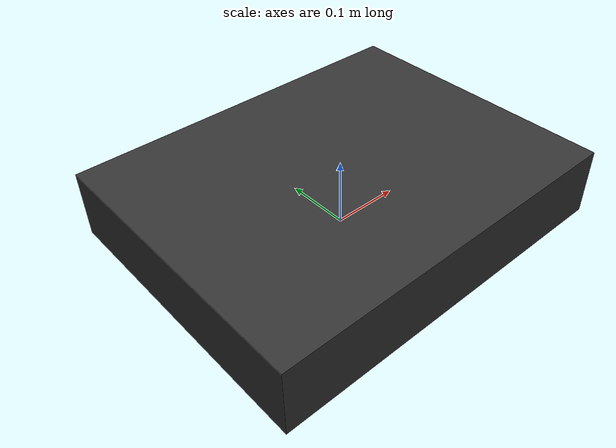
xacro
<?xml version="1.0"?>
<robot name="autodrive" xmlns:xacro="http://www.ros.org/wiki/xacro">

  <!--
    Vehicle geometry properties for the kinematic bicycle model.
    These values are the initial measurements and may be refined later.
  -->
  <xacro:property name="wheelbase" value="0.545"/>    <!-- [m] front-to-rear axle distance -->
  <xacro:property name="track_width" value="0.430"/>  <!-- [m] left-to-right wheel distance -->
  <xacro:property name="camera_height" value="0.68"/> <!-- [m] camera height above base_link -->

  <!--
    TODO: camera_front extrinsic is a placeholder. Replace x/y/z and roll/pitch/yaw
    below with the measured/calibrated values once the physical mount is finalized.
  -->
  <xacro:property name="camera_front_x" value="${wheelbase / 2.0}"/>
  <xacro:property name="camera_front_y" value="0.0"/>
  <xacro:property name="camera_front_z" value="${camera_height}"/>
  <xacro:property name="camera_front_roll" value="0.0"/>
  <xacro:property name="camera_front_pitch" value="0.0"/>
  <xacro:property name="camera_front_yaw" value="0.0"/>

  <xacro:property name="camera_rear_x" value="${-wheelbase / 2.0}"/>
  <xacro:property name="camera_rear_y" value="0.0"/>
  <xacro:property name="camera_rear_z" value="${camera_height}"/>
  <xacro:property name="camera_rear_roll" value="0.0"/>
  <xacro:property name="camera_rear_pitch" value="0.0"/>
  <xacro:property name="camera_rear_yaw" value="${pi}"/>

  <material name="body_color">
    <color rgba="0.2 0.2 0.2 1.0"/>
  </material>

  <link name="base_link">
    <visual>
      <origin xyz="0 0 0.05" rpy="0 0 0"/>
      <geometry>
        <box size="${wheelbase} ${track_width} 0.1"/>
      </geometry>
      <material name="body_color"/>
    </visual>
  </link>

  <!-- Front camera mounting frame, fixed relative to base_link -->
  <link name="camera_front_link"/>

  <joint name="camera_front_joint" type="fixed">
    <parent link="base_link"/>
    <child link="camera_front_link"/>
    <!-- TODO: calibrate real camera extrinsic offset and orientation -->
    <origin xyz="${camera_front_x} ${camera_front_y} ${camera_front_z}"
            rpy="${camera_front_roll} ${camera_front_pitch} ${camera_front_yaw}"/>
  </joint>

  <!-- Optical frame following REP 103 (x-right, y-down, z-forward) -->
  <link name="camera_front_optical_frame"/>

  <joint name="camera_front_optical_joint" type="fixed">
    <parent link="camera_front_link"/>
    <child link="camera_front_optical_frame"/>
    <origin xyz="0 0 0" rpy="${-pi/2} 0 ${-pi/2}"/>
  </joint>

  <!-- Rear camera mounting frame, fixed relative to base_link -->
  <link name="camera_rear_link"/>

  <joint name="camera_rear_joint" type="fixed">
    <parent link="base_link"/>
    <child link="camera_rear_link"/>
    <!-- TODO: calibrate real camera extrinsic offset and orientation -->
    <origin xyz="${camera_rear_x} ${camera_rear_y} ${camera_rear_z}"
            rpy="${camera_rear_roll} ${camera_rear_pitch} ${camera_rear_yaw}"/>
  </joint>

  <!-- Optical frame following REP 103 (x-right, y-down, z-forward) -->
  <link name="camera_rear_optical_frame"/>

  <joint name="camera_rear_optical_joint" type="fixed">
    <parent link="camera_rear_link"/>
    <child link="camera_rear_optical_frame"/>
    <origin xyz="0 0 0" rpy="${-pi/2} 0 ${-pi/2}"/>
  </joint>

</robot>
